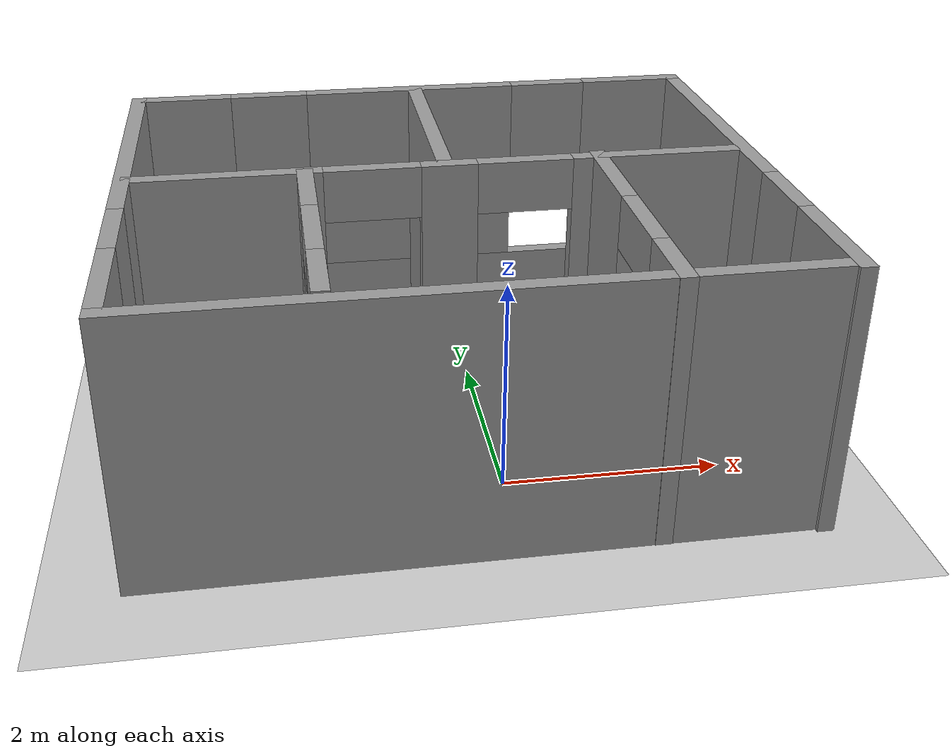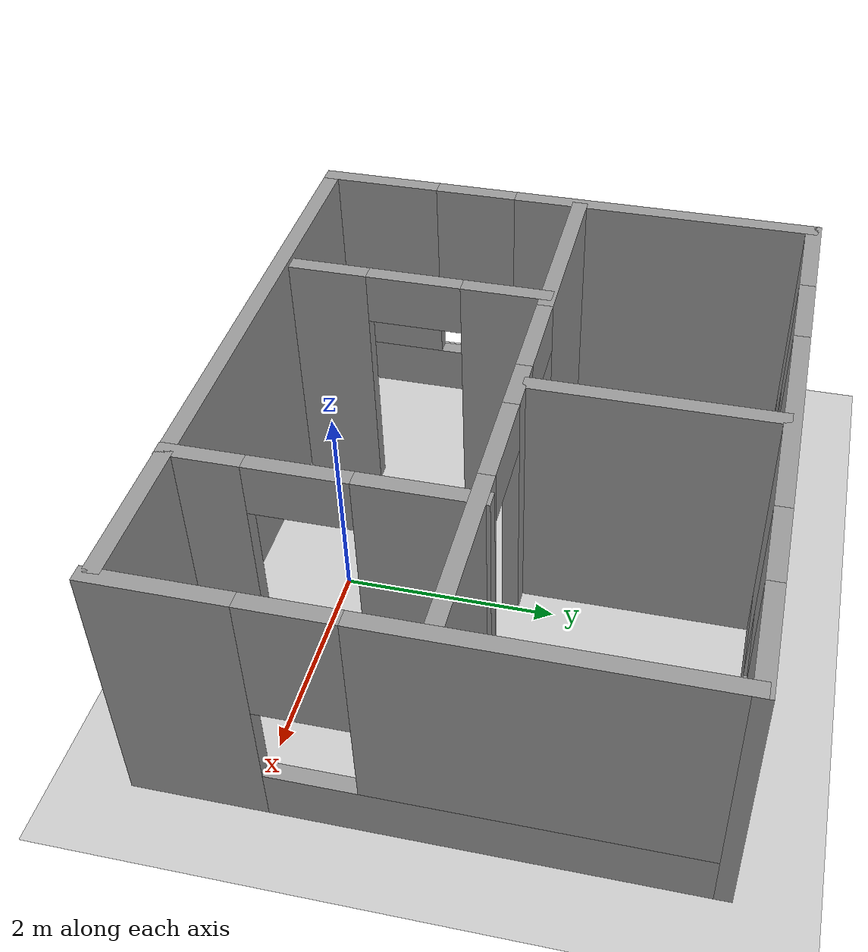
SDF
<sdf version="1.4">
  <world name="default">

    <scene>
      <ambient>0.4 0.4 0.4 1</ambient>
      <background>0.7 0.7 0.7 1</background>
      <shadows>true</shadows>
    </scene>

    <!-- A global light source -->
    <include>
      <uri>model://sun</uri>
    </include>

    <!-- A ground plane -->
    <include>
      <uri>model://ground_plane</uri>
    </include>

    <!-- Our Map -->
    <include>
      <uri>model://final</uri>
    </include>

    <physics type="ode">
      <real_time_update_rate>1000.0</real_time_update_rate>
      <max_step_size>0.001</max_step_size>
      <real_time_factor>1</real_time_factor>
      <ode>
        <solver>
          <type>quick</type>
          <iters>150</iters>
          <precon_iters>0</precon_iters>
          <sor>1.400000</sor>
          <use_dynamic_moi_rescaling>1</use_dynamic_moi_rescaling>
        </solver>
        <constraints>
          <cfm>0.00001</cfm>
          <erp>0.2</erp>
          <contact_max_correcting_vel>2000.000000</contact_max_correcting_vel>
          <contact_surface_layer>0.01000</contact_surface_layer>
        </constraints>
      </ode>
    </physics>
  </world>

</sdf>

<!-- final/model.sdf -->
<sdf version='1.7'>
  <model name='final'>
    <pose>-0.309102 1.43891 0 0 -0 0</pose>
    <link name='Wall_10'>
      <collision name='Wall_10_Collision'>
        <geometry>
          <box>
            <size>5.95274 0.15 2.5</size>
          </box>
        </geometry>
        <pose>0 0 1.25 0 -0 0</pose>
      </collision>
      <visual name='Wall_10_Visual'>
        <pose>0 0 1.25 0 -0 0</pose>
        <geometry>
          <box>
            <size>5.95274 0.15 2.5</size>
          </box>
        </geometry>
        <material>
          <script>
            <uri>file://media/materials/scripts/gazebo.material</uri>
            <name>Gazebo/Grey</name>
          </script>
          <ambient>1 1 1 1</ambient>
        </material>
        <meta>
          <layer>0</layer>
        </meta>
      </visual>
      <pose>0 -2.40799 0 0 -0 0</pose>
    </link>
    <link name='Wall_11'>
      <pose>2.90137 -0.017013 0 0 -0 1.5708</pose>
      <visual name='Wall_11_Visual_0'>
        <pose>-1.89239 0 1.25 0 -0 0</pose>
        <geometry>
          <box>
            <size>1.21522 0.15 2.5</size>
          </box>
        </geometry>
        <material>
          <script>
            <uri>file://media/materials/scripts/gazebo.material</uri>
            <name>Gazebo/Grey</name>
          </script>
          <ambient>1 1 1 1</ambient>
        </material>
        <meta>
          <layer>0</layer>
        </meta>
      </visual>
      <collision name='Wall_11_Collision_0'>
        <geometry>
          <box>
            <size>1.21522 0.15 2.5</size>
          </box>
        </geometry>
        <pose>-1.89239 0 1.25 0 -0 0</pose>
      </collision>
      <visual name='Wall_11_Visual_1'>
        <pose>0.607611 0 0.25 0 -0 0</pose>
        <geometry>
          <box>
            <size>3.78478 0.15 0.5</size>
          </box>
        </geometry>
        <material>
          <script>
            <uri>file://media/materials/scripts/gazebo.material</uri>
            <name>Gazebo/Grey</name>
          </script>
          <ambient>1 1 1 1</ambient>
        </material>
        <meta>
          <layer>0</layer>
        </meta>
      </visual>
      <collision name='Wall_11_Collision_1'>
        <geometry>
          <box>
            <size>3.78478 0.15 0.5</size>
          </box>
        </geometry>
        <pose>0.607611 0 0.25 0 -0 0</pose>
      </collision>
      <visual name='Wall_11_Visual_2'>
        <pose>1.00761 0 1.5 0 -0 0</pose>
        <geometry>
          <box>
            <size>2.98478 0.15 2</size>
          </box>
        </geometry>
        <material>
          <script>
            <uri>file://media/materials/scripts/gazebo.material</uri>
            <name>Gazebo/Grey</name>
          </script>
          <ambient>1 1 1 1</ambient>
        </material>
        <meta>
          <layer>0</layer>
        </meta>
      </visual>
      <collision name='Wall_11_Collision_2'>
        <geometry>
          <box>
            <size>2.98478 0.15 2</size>
          </box>
        </geometry>
        <pose>1.00761 0 1.5 0 -0 0</pose>
      </collision>
      <visual name='Wall_11_Visual_3'>
        <pose>-0.884778 0 1.9 0 -0 0</pose>
        <geometry>
          <box>
            <size>0.8 0.15 1.2</size>
          </box>
        </geometry>
        <material>
          <script>
            <uri>file://media/materials/scripts/gazebo.material</uri>
            <name>Gazebo/Grey</name>
          </script>
          <ambient>1 1 1 1</ambient>
        </material>
        <meta>
          <layer>0</layer>
        </meta>
      </visual>
      <collision name='Wall_11_Collision_3'>
        <geometry>
          <box>
            <size>0.8 0.15 1.2</size>
          </box>
        </geometry>
        <pose>-0.884778 0 1.9 0 -0 0</pose>
      </collision>
    </link>
    <link name='Wall_13'>
      <pose>-0.038212 0.15303 0 0 -0 0</pose>
      <visual name='Wall_13_Visual_0'>
        <pose>-1.97365 0 1.25 0 -0 0</pose>
        <geometry>
          <box>
            <size>1.80269 0.15 2.5</size>
          </box>
        </geometry>
        <material>
          <script>
            <uri>file://media/materials/scripts/gazebo.material</uri>
            <name>Gazebo/Grey</name>
          </script>
          <ambient>1 1 1 1</ambient>
        </material>
        <meta>
          <layer>0</layer>
        </meta>
      </visual>
      <collision name='Wall_13_Collision_0'>
        <geometry>
          <box>
            <size>1.80269 0.15 2.5</size>
          </box>
        </geometry>
        <pose>-1.97365 0 1.25 0 -0 0</pose>
      </collision>
      <visual name='Wall_13_Visual_1'>
        <pose>0.09225 0 1.25 0 -0 0</pose>
        <geometry>
          <box>
            <size>0.529112 0.15 2.5</size>
          </box>
        </geometry>
        <material>
          <script>
            <uri>file://media/materials/scripts/gazebo.material</uri>
            <name>Gazebo/Grey</name>
          </script>
          <ambient>1 1 1 1</ambient>
        </material>
        <meta>
          <layer>0</layer>
        </meta>
      </visual>
      <collision name='Wall_13_Collision_1'>
        <geometry>
          <box>
            <size>0.529112 0.15 2.5</size>
          </box>
        </geometry>
        <pose>0.09225 0 1.25 0 -0 0</pose>
      </collision>
      <visual name='Wall_13_Visual_2'>
        <pose>2.0659 0 1.25 0 -0 0</pose>
        <geometry>
          <box>
            <size>1.6182 0.15 2.5</size>
          </box>
        </geometry>
        <material>
          <script>
            <uri>file://media/materials/scripts/gazebo.material</uri>
            <name>Gazebo/Grey</name>
          </script>
          <ambient>1 1 1 1</ambient>
        </material>
        <meta>
          <layer>0</layer>
        </meta>
      </visual>
      <collision name='Wall_13_Collision_2'>
        <geometry>
          <box>
            <size>1.6182 0.15 2.5</size>
          </box>
        </geometry>
        <pose>2.0659 0 1.25 0 -0 0</pose>
      </collision>
      <visual name='Wall_13_Visual_3'>
        <pose>-0.622306 0 2.25 0 -0 0</pose>
        <geometry>
          <box>
            <size>0.9 0.15 0.5</size>
          </box>
        </geometry>
        <material>
          <script>
            <uri>file://media/materials/scripts/gazebo.material</uri>
            <name>Gazebo/Grey</name>
          </script>
          <ambient>1 1 1 1</ambient>
        </material>
        <meta>
          <layer>0</layer>
        </meta>
      </visual>
      <collision name='Wall_13_Collision_3'>
        <geometry>
          <box>
            <size>0.9 0.15 0.5</size>
          </box>
        </geometry>
        <pose>-0.622306 0 2.25 0 -0 0</pose>
      </collision>
      <visual name='Wall_13_Visual_4'>
        <pose>0.806805 0 2.25 0 -0 0</pose>
        <geometry>
          <box>
            <size>0.9 0.15 0.5</size>
          </box>
        </geometry>
        <material>
          <script>
            <uri>file://media/materials/scripts/gazebo.material</uri>
            <name>Gazebo/Grey</name>
          </script>
          <ambient>1 1 1 1</ambient>
        </material>
        <meta>
          <layer>0</layer>
        </meta>
      </visual>
      <collision name='Wall_13_Collision_4'>
        <geometry>
          <box>
            <size>0.9 0.15 0.5</size>
          </box>
        </geometry>
        <pose>0.806805 0 2.25 0 -0 0</pose>
      </collision>
    </link>
    <link name='Wall_15'>
      <collision name='Wall_15_Collision'>
        <geometry>
          <box>
            <size>2.25 0.15 2.5</size>
          </box>
        </geometry>
        <pose>0 0 1.25 0 -0 0</pose>
      </collision>
      <visual name='Wall_15_Visual'>
        <pose>0 0 1.25 0 -0 0</pose>
        <geometry>
          <box>
            <size>2.25 0.15 2.5</size>
          </box>
        </geometry>
        <material>
          <script>
            <uri>file://media/materials/scripts/gazebo.material</uri>
            <name>Gazebo/Grey</name>
          </script>
          <ambient>1 1 1 1</ambient>
        </material>
        <meta>
          <layer>0</layer>
        </meta>
      </visual>
      <pose>0.020012 1.31475 0 0 -0 -1.5708</pose>
    </link>
    <link name='Wall_17'>
      <pose>-1.27299 -1.056 0 0 -0 -1.5708</pose>
      <visual name='Wall_17_Visual_0'>
        <pose>-0.825024 0 1.25 0 -0 0</pose>
        <geometry>
          <box>
            <size>0.849953 0.15 2.5</size>
          </box>
        </geometry>
        <material>
          <script>
            <uri>file://media/materials/scripts/gazebo.material</uri>
            <name>Gazebo/Grey</name>
          </script>
          <ambient>1 1 1 1</ambient>
        </material>
        <meta>
          <layer>0</layer>
        </meta>
      </visual>
      <collision name='Wall_17_Collision_0'>
        <geometry>
          <box>
            <size>0.849953 0.15 2.5</size>
          </box>
        </geometry>
        <pose>-0.825024 0 1.25 0 -0 0</pose>
      </collision>
      <visual name='Wall_17_Visual_1'>
        <pose>0.874976 0 1.25 0 -0 0</pose>
        <geometry>
          <box>
            <size>0.750047 0.15 2.5</size>
          </box>
        </geometry>
        <material>
          <script>
            <uri>file://media/materials/scripts/gazebo.material</uri>
            <name>Gazebo/Grey</name>
          </script>
          <ambient>1 1 1 1</ambient>
        </material>
        <meta>
          <layer>0</layer>
        </meta>
      </visual>
      <collision name='Wall_17_Collision_1'>
        <geometry>
          <box>
            <size>0.750047 0.15 2.5</size>
          </box>
        </geometry>
        <pose>0.874976 0 1.25 0 -0 0</pose>
      </collision>
      <visual name='Wall_17_Visual_2'>
        <pose>0.049953 0 2.25 0 -0 0</pose>
        <geometry>
          <box>
            <size>0.9 0.15 0.5</size>
          </box>
        </geometry>
        <material>
          <script>
            <uri>file://media/materials/scripts/gazebo.material</uri>
            <name>Gazebo/Grey</name>
          </script>
          <ambient>1 1 1 1</ambient>
        </material>
        <meta>
          <layer>0</layer>
        </meta>
      </visual>
      <collision name='Wall_17_Collision_2'>
        <geometry>
          <box>
            <size>0.9 0.15 0.5</size>
          </box>
        </geometry>
        <pose>0.049953 0 2.25 0 -0 0</pose>
      </collision>
    </link>
    <link name='Wall_20'>
      <pose>1.48315 -1.11294 0 0 -0 -1.5708</pose>
      <visual name='Wall_20_Visual_0'>
        <pose>-0.813918 0 1.25 0 -0 0</pose>
        <geometry>
          <box>
            <size>1.12216 0.15 2.5</size>
          </box>
        </geometry>
        <material>
          <script>
            <uri>file://media/materials/scripts/gazebo.material</uri>
            <name>Gazebo/Grey</name>
          </script>
          <ambient>1 1 1 1</ambient>
        </material>
        <meta>
          <layer>0</layer>
        </meta>
      </visual>
      <collision name='Wall_20_Collision_0'>
        <geometry>
          <box>
            <size>1.12216 0.15 2.5</size>
          </box>
        </geometry>
        <pose>-0.813918 0 1.25 0 -0 0</pose>
      </collision>
      <visual name='Wall_20_Visual_1'>
        <pose>1.01108 0 1.25 0 -0 0</pose>
        <geometry>
          <box>
            <size>0.727836 0.15 2.5</size>
          </box>
        </geometry>
        <material>
          <script>
            <uri>file://media/materials/scripts/gazebo.material</uri>
            <name>Gazebo/Grey</name>
          </script>
          <ambient>1 1 1 1</ambient>
        </material>
        <meta>
          <layer>0</layer>
        </meta>
      </visual>
      <collision name='Wall_20_Collision_1'>
        <geometry>
          <box>
            <size>0.727836 0.15 2.5</size>
          </box>
        </geometry>
        <pose>1.01108 0 1.25 0 -0 0</pose>
      </collision>
      <visual name='Wall_20_Visual_2'>
        <pose>0.197164 0 2.25 0 -0 0</pose>
        <geometry>
          <box>
            <size>0.9 0.15 0.5</size>
          </box>
        </geometry>
        <material>
          <script>
            <uri>file://media/materials/scripts/gazebo.material</uri>
            <name>Gazebo/Grey</name>
          </script>
          <ambient>1 1 1 1</ambient>
        </material>
        <meta>
          <layer>0</layer>
        </meta>
      </visual>
      <collision name='Wall_20_Collision_2'>
        <geometry>
          <box>
            <size>0.9 0.15 0.5</size>
          </box>
        </geometry>
        <pose>0.197164 0 2.25 0 -0 0</pose>
      </collision>
    </link>
    <link name='Wall_7'>
      <pose>0 2.44201 0 0 -0 3.14159</pose>
      <visual name='Wall_7_Visual_0'>
        <pose>-2.42976 0 1.25 0 -0 0</pose>
        <geometry>
          <box>
            <size>1.09322 0.15 2.5</size>
          </box>
        </geometry>
        <material>
          <script>
            <uri>file://media/materials/scripts/gazebo.material</uri>
            <name>Gazebo/Grey</name>
          </script>
          <ambient>1 1 1 1</ambient>
        </material>
        <meta>
          <layer>0</layer>
        </meta>
      </visual>
      <collision name='Wall_7_Collision_0'>
        <geometry>
          <box>
            <size>1.09322 0.15 2.5</size>
          </box>
        </geometry>
        <pose>-2.42976 0 1.25 0 -0 0</pose>
      </collision>
      <visual name='Wall_7_Visual_1'>
        <pose>0.54661 0 0.25 0 -0 0</pose>
        <geometry>
          <box>
            <size>4.85952 0.15 0.5</size>
          </box>
        </geometry>
        <material>
          <script>
            <uri>file://media/materials/scripts/gazebo.material</uri>
            <name>Gazebo/Grey</name>
          </script>
          <ambient>1 1 1 1</ambient>
        </material>
        <meta>
          <layer>0</layer>
        </meta>
      </visual>
      <collision name='Wall_7_Collision_1'>
        <geometry>
          <box>
            <size>4.85952 0.15 0.5</size>
          </box>
        </geometry>
        <pose>0.54661 0 0.25 0 -0 0</pose>
      </collision>
      <visual name='Wall_7_Visual_2'>
        <pose>0.031028 0 1.5 0 -0 0</pose>
        <geometry>
          <box>
            <size>2.22836 0.15 2</size>
          </box>
        </geometry>
        <material>
          <script>
            <uri>file://media/materials/scripts/gazebo.material</uri>
            <name>Gazebo/Grey</name>
          </script>
          <ambient>1 1 1 1</ambient>
        </material>
        <meta>
          <layer>0</layer>
        </meta>
      </visual>
      <collision name='Wall_7_Collision_2'>
        <geometry>
          <box>
            <size>2.22836 0.15 2</size>
          </box>
        </geometry>
        <pose>0.031028 0 1.5 0 -0 0</pose>
      </collision>
      <visual name='Wall_7_Visual_3'>
        <pose>2.46079 0 1.5 0 -0 0</pose>
        <geometry>
          <box>
            <size>1.03117 0.15 2</size>
          </box>
        </geometry>
        <material>
          <script>
            <uri>file://media/materials/scripts/gazebo.material</uri>
            <name>Gazebo/Grey</name>
          </script>
          <ambient>1 1 1 1</ambient>
        </material>
        <meta>
          <layer>0</layer>
        </meta>
      </visual>
      <collision name='Wall_7_Collision_3'>
        <geometry>
          <box>
            <size>1.03117 0.15 2</size>
          </box>
        </geometry>
        <pose>2.46079 0 1.5 0 -0 0</pose>
      </collision>
      <visual name='Wall_7_Visual_4'>
        <pose>-1.48315 0 1.9 0 -0 0</pose>
        <geometry>
          <box>
            <size>0.8 0.15 1.2</size>
          </box>
        </geometry>
        <material>
          <script>
            <uri>file://media/materials/scripts/gazebo.material</uri>
            <name>Gazebo/Grey</name>
          </script>
          <ambient>1 1 1 1</ambient>
        </material>
        <meta>
          <layer>0</layer>
        </meta>
      </visual>
      <collision name='Wall_7_Collision_4'>
        <geometry>
          <box>
            <size>0.8 0.15 1.2</size>
          </box>
        </geometry>
        <pose>-1.48315 0 1.9 0 -0 0</pose>
      </collision>
      <visual name='Wall_7_Visual_5'>
        <pose>1.54521 0 1.9 0 -0 0</pose>
        <geometry>
          <box>
            <size>0.8 0.15 1.2</size>
          </box>
        </geometry>
        <material>
          <script>
            <uri>file://media/materials/scripts/gazebo.material</uri>
            <name>Gazebo/Grey</name>
          </script>
          <ambient>1 1 1 1</ambient>
        </material>
        <meta>
          <layer>0</layer>
        </meta>
      </visual>
      <collision name='Wall_7_Collision_5'>
        <geometry>
          <box>
            <size>0.8 0.15 1.2</size>
          </box>
        </geometry>
        <pose>1.54521 0 1.9 0 -0 0</pose>
      </collision>
    </link>
    <link name='Wall_9'>
      <pose>-2.90137 0.017013 0 0 -0 -1.5708</pose>
      <visual name='Wall_9_Visual_0'>
        <pose>-0.990598 0 1.25 0 -0 0</pose>
        <geometry>
          <box>
            <size>3.0188 0.15 2.5</size>
          </box>
        </geometry>
        <material>
          <script>
            <uri>file://media/materials/scripts/gazebo.material</uri>
            <name>Gazebo/Grey</name>
          </script>
          <ambient>1 1 1 1</ambient>
        </material>
        <meta>
          <layer>0</layer>
        </meta>
      </visual>
      <collision name='Wall_9_Collision_0'>
        <geometry>
          <box>
            <size>3.0188 0.15 2.5</size>
          </box>
        </geometry>
        <pose>-0.990598 0 1.25 0 -0 0</pose>
      </collision>
      <visual name='Wall_9_Visual_1'>
        <pose>1.5094 0 0.25 0 -0 0</pose>
        <geometry>
          <box>
            <size>1.9812 0.15 0.5</size>
          </box>
        </geometry>
        <material>
          <script>
            <uri>file://media/materials/scripts/gazebo.material</uri>
            <name>Gazebo/Grey</name>
          </script>
          <ambient>1 1 1 1</ambient>
        </material>
        <meta>
          <layer>0</layer>
        </meta>
      </visual>
      <collision name='Wall_9_Collision_1'>
        <geometry>
          <box>
            <size>1.9812 0.15 0.5</size>
          </box>
        </geometry>
        <pose>1.5094 0 0.25 0 -0 0</pose>
      </collision>
      <visual name='Wall_9_Visual_2'>
        <pose>1.9094 0 1.5 0 -0 0</pose>
        <geometry>
          <box>
            <size>1.1812 0.15 2</size>
          </box>
        </geometry>
        <material>
          <script>
            <uri>file://media/materials/scripts/gazebo.material</uri>
            <name>Gazebo/Grey</name>
          </script>
          <ambient>1 1 1 1</ambient>
        </material>
        <meta>
          <layer>0</layer>
        </meta>
      </visual>
      <collision name='Wall_9_Collision_2'>
        <geometry>
          <box>
            <size>1.1812 0.15 2</size>
          </box>
        </geometry>
        <pose>1.9094 0 1.5 0 -0 0</pose>
      </collision>
      <visual name='Wall_9_Visual_3'>
        <pose>0.918804 0 1.9 0 -0 0</pose>
        <geometry>
          <box>
            <size>0.8 0.15 1.2</size>
          </box>
        </geometry>
        <material>
          <script>
            <uri>file://media/materials/scripts/gazebo.material</uri>
            <name>Gazebo/Grey</name>
          </script>
          <ambient>1 1 1 1</ambient>
        </material>
        <meta>
          <layer>0</layer>
        </meta>
      </visual>
      <collision name='Wall_9_Collision_3'>
        <geometry>
          <box>
            <size>0.8 0.15 1.2</size>
          </box>
        </geometry>
        <pose>0.918804 0 1.9 0 -0 0</pose>
      </collision>
    </link>
    <static>1</static>
  </model>
</sdf>
